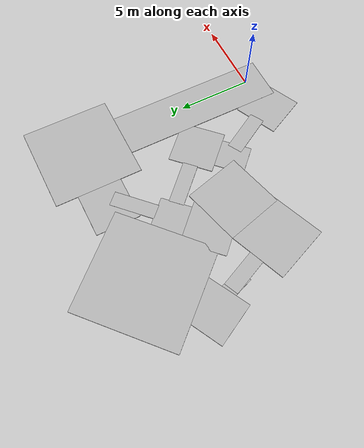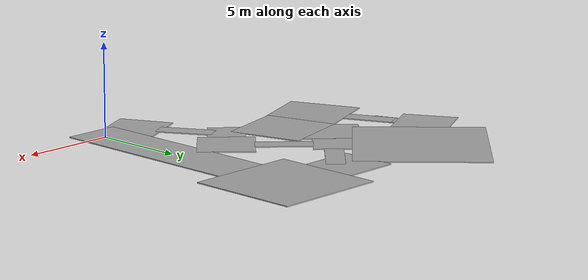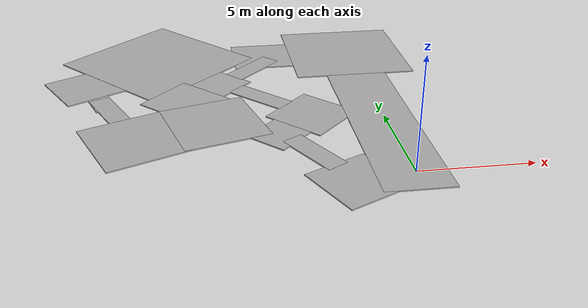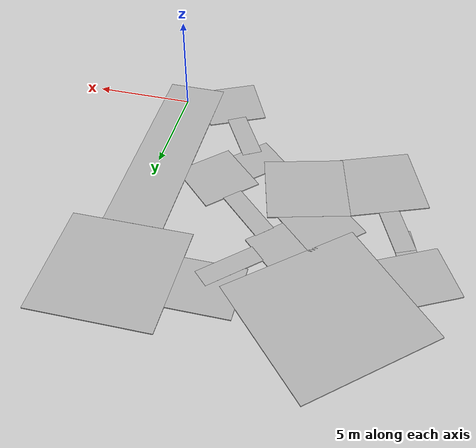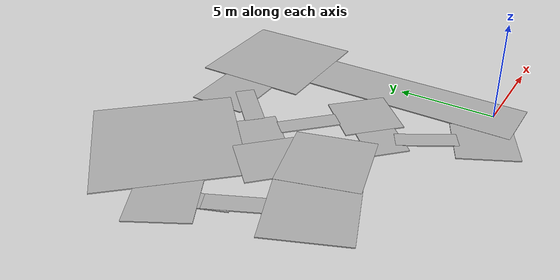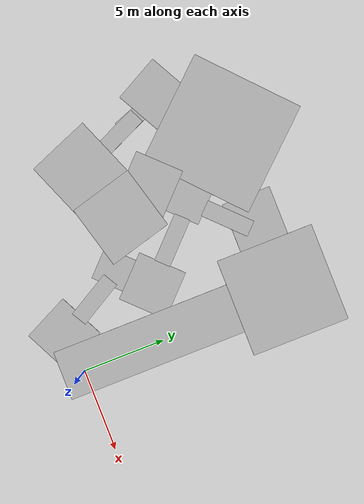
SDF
<sdf version="1.6">
 <world name="default">
  <light name="sun" type="directional">
   <pose>0 0 10 0 -0 0</pose>
   <diffuse>0.8 0.8 0.8 1</diffuse>
   <specular>0.2 0.2 0.2 1</specular>
   <attenuation>
    <range>1000</range>
    <constant>0.9</constant>
    <linear>0.01</linear>
    <quadratic>0.001</quadratic>
   </attenuation>
   <direction>-0.5 0.1 -0.9</direction>
  </light>
  <gravity>0 0 -9.8</gravity>
  <magnetic_field>6e-06 2.3e-05 -4.2e-05</magnetic_field>
  <atmosphere type="adiabatic"/>
  <physics name="default_physics" default="0" type="ode">
   <max_step_size>0.001</max_step_size>
   <real_time_factor>1</real_time_factor>
   <real_time_update_rate>1000</real_time_update_rate>
  </physics>
  <scene><ambient>0.4 0.4 0.4 1</ambient><background>0.7 0.7 0.7 1</background><shadows>1</shadows></scene>
  <audio><device>default</device></audio>
  <spherical_coordinates>
   <surface_model>EARTH_WGS84</surface_model>
   <latitude_deg>0</latitude_deg>
   <longitude_deg>0</longitude_deg>
   <elevation>0</elevation>
   <heading_deg>0</heading_deg>
  </spherical_coordinates>
  <model name="start_w400_black">
   <static>1</static>
   <link name="link">
    <collision name="collision">
     <geometry><box><size>11 3 0.05</size></box></geometry>
     <surface><friction><ode><mu>100</mu><mu2>50</mu2></ode></friction></surface>
    </collision>
    <visual name="visual">
     <cast_shadows>0</cast_shadows>
     <geometry><box><size>11 3 0.05</size></box></geometry>
     <material>
      <script>
       <uri>model://start_w400_black/materials/scripts</uri>
       <uri>model://start_w400_black/materials/textures/</uri>
       <name>start_w400_black/Image</name>
      </script>
     </material>
    </visual>
   </link>
   <pose>-0.193338 4.17342 0 0 -0 1.57079</pose>
  </model>
  <model name="left_curve_r300_a90_00">
   <static>1</static>
   <link name="link">
    <collision name="collision">
     <geometry><box><size>6 6 0.05</size></box></geometry>
     <surface><friction><ode><mu>100</mu><mu2>50</mu2></ode></friction></surface>
    </collision>
    <visual name="visual">
     <cast_shadows>0</cast_shadows>
     <geometry><box><size>6 6 0.05</size></box></geometry>
     <material>
      <script>
       <uri>model://left_curve_r300_a90_00/materials/scripts</uri>
       <uri>model://left_curve_r300_a90_00/materials/textures/</uri>
       <name>left_curve_r300_a90_00/Image</name>
      </script>
     </material>
    </visual>
   </link>
   <pose>-0.193023 12.674 0 0 -0 3.14159</pose>
  </model>
  <model name="left_curve_r150_a45_030">
   <static>1</static>
   <link name="link">
    <collision name="collision">
     <geometry><box><size>3 3 0.05</size></box></geometry>
     <surface><friction><ode><mu>100</mu><mu2>50</mu2></ode></friction></surface>
    </collision>
    <visual name="visual">
     <cast_shadows>0</cast_shadows>
     <geometry><box><size>3 3 0.05</size></box></geometry>
     <material>
      <script>
       <uri>model://left_curve_r150_a45_030/materials/scripts</uri>
       <uri>model://left_curve_r150_a45_030/materials/textures/</uri>
       <name>left_curve_r150_a45_030/Image</name>
      </script>
     </material>
    </visual>
   </link>
   <pose>-4.6927 12.6748 0 0 0 -1.5708</pose>
  </model>
  <model name="stop_crossing">
   <static>1</static>
   <link name="link">
    <collision name="collision">
     <geometry><box><size>2.1 2.1 0.05</size></box></geometry>
     <surface><friction><ode><mu>100</mu><mu2>50</mu2></ode></friction></surface>
    </collision>
    <visual name="visual">
     <cast_shadows>0</cast_shadows>
     <geometry><box><size>2.1 2.1 0.05</size></box></geometry>
     <material>
      <script>
       <uri>model://stop_crossing/materials/scripts</uri>
       <uri>model://stop_crossing/materials/textures/</uri>
       <name>stop_crossing/Image</name>
      </script>
     </material>
    </visual>
   </link>
   <pose>-7.10184 9.42657 0 0 -0 0.789918</pose>
  </model>
  <model name="straight_300_o_25">
   <static>1</static>
   <link name="link">
    <collision name="collision">
     <geometry><box><size>3 1 0.05</size></box></geometry>
     <surface><friction><ode><mu>100</mu><mu2>50</mu2></ode></friction></surface>
    </collision>
    <visual name="visual">
     <cast_shadows>0</cast_shadows>
     <geometry><box><size>3 1 0.05</size></box></geometry>
     <material>
      <script>
       <uri>model://straight_300_o_25/materials/scripts</uri>
       <uri>model://straight_300_o_25/materials/textures/</uri>
       <name>straight_300_o_25/Image</name>
      </script>
     </material>
    </visual>
   </link>
   <pose>-5.32382 11.1876 0.001 0 -0 0.774294</pose>
  </model>
  <model name="straight_300_o_25_0">
   <static>1</static>
   <link name="link">
    <collision name="collision">
     <geometry><box><size>3 1 0.05</size></box></geometry>
     <surface><friction><ode><mu>100</mu><mu2>50</mu2></ode></friction></surface>
    </collision>
    <visual name="visual">
     <cast_shadows>0</cast_shadows>
     <geometry><box><size>3 1 0.05</size></box></geometry>
     <material>
      <script>
       <uri>model://straight_300_o_25/materials/scripts</uri>
       <uri>model://straight_300_o_25/materials/textures/</uri>
       <name>straight_300_o_25/Image</name>
      </script>
     </material>
    </visual>
   </link>
   <pose>-5.32432 7.66399 0.00145 0 0 -0.781825</pose>
  </model>
  <model name="right_curve_r150_a90_o30">
   <static>1</static>
   <link name="link">
    <collision name="collision">
     <geometry><box><size>3 3 0.05</size></box></geometry>
     <surface><friction><ode><mu>100</mu><mu2>50</mu2></ode></friction></surface>
    </collision>
    <visual name="visual">
     <cast_shadows>0</cast_shadows>
     <geometry><box><size>3 3 0.05</size></box></geometry>
     <material>
      <script>
       <uri>model://right_curve_r150_a90_o30/materials/scripts</uri>
       <uri>model://right_curve_r150_a90_o30/materials/textures/</uri>
       <name>right_curve_r150_a90_o30/Image</name>
      </script>
     </material>
    </visual>
   </link>
   <pose>-3.23155 5.58171 0 0 -0 2.35677</pose>
  </model>
  <model name="left_curve_r100_a75_025">
   <static>1</static>
   <link name="link">
    <collision name="collision">
     <geometry><box><size>2 2 0.05</size></box></geometry>
     <surface><friction><ode><mu>100</mu><mu2>50</mu2></ode></friction></surface>
    </collision>
    <visual name="visual">
     <cast_shadows>0</cast_shadows>
     <geometry><box><size>2 2 0.05</size></box></geometry>
     <material>
      <script>
       <uri>model://left_curve_r100_a75_025/materials/scripts</uri>
       <uri>model://left_curve_r100_a75_025/materials/textures/</uri>
       <name>left_curve_r100_a75_025/Image</name>
      </script>
     </material>
    </visual>
   </link>
   <pose>-4.99373 3.81358 0 0 0 -0.782313</pose>
  </model>
  <model name="straight_300_o_25_0_clone">
   <static>1</static>
   <link name="link">
    <collision name="collision">
     <geometry><box><size>3 1 0.05</size></box></geometry>
     <surface><friction><ode><mu>100</mu><mu2>50</mu2></ode></friction></surface>
    </collision>
    <visual name="visual">
     <cast_shadows>0</cast_shadows>
     <geometry><box><size>3 1 0.05</size></box></geometry>
     <material>
      <script>
       <uri>model://straight_300_o_25/materials/scripts</uri>
       <uri>model://straight_300_o_25/materials/textures/</uri>
       <name>straight_300_o_25/Image</name>
      </script>
     </material>
    </visual>
   </link>
   <pose>-3.7385 2.09443 0.00145 0 -0 2.0927</pose>
  </model>
  <model name="right_curve_r150_a90_o30_clone">
   <static>1</static>
   <link name="link">
    <collision name="collision">
     <geometry><box><size>3 3 0.05</size></box></geometry>
     <surface><friction><ode><mu>100</mu><mu2>50</mu2></ode></friction></surface>
    </collision>
    <visual name="visual">
     <cast_shadows>0</cast_shadows>
     <geometry><box><size>3 3 0.05</size></box></geometry>
     <material>
      <script>
       <uri>model://right_curve_r150_a90_o30/materials/scripts</uri>
       <uri>model://right_curve_r150_a90_o30/materials/textures/</uri>
       <name>right_curve_r150_a90_o30/Image</name>
      </script>
     </material>
    </visual>
   </link>
   <pose>-2.46675 -0.335688 -0.002037 0 -0 0.452633</pose>
  </model>
  <model name="left_curve_r150_a60_020">
   <static>1</static>
   <link name="link">
    <collision name="collision">
     <geometry><box><size>3 3 0.05</size></box></geometry>
     <surface><friction><ode><mu>100</mu><mu2>50</mu2></ode></friction></surface>
    </collision>
    <visual name="visual">
     <cast_shadows>0</cast_shadows>
     <geometry><box><size>3 3 0.05</size></box></geometry>
     <material>
      <script>
       <uri>model://left_curve_r150_a60_020/materials/scripts</uri>
       <uri>model://left_curve_r150_a60_020/materials/textures/</uri>
       <name>left_curve_r150_a60_020/Image</name>
      </script>
     </material>
    </visual>
   </link>
   <pose>-8.89192 7.61762 0.001 0 0 -0.779843</pose>
  </model>
  <model name="right_curve_r200_a90_o20">
   <static>1</static>
   <link name="link">
    <collision name="collision">
     <geometry><box><size>4 4 0.05</size></box></geometry>
     <surface><friction><ode><mu>100</mu><mu2>50</mu2></ode></friction></surface>
    </collision>
    <visual name="visual">
     <cast_shadows>0</cast_shadows>
     <geometry><box><size>4 4 0.05</size></box></geometry>
     <material>
      <script>
       <uri>model://right_curve_r200_a90_o20/materials/scripts</uri>
       <uri>model://right_curve_r200_a90_o20/materials/textures/</uri>
       <name>right_curve_r200_a90_o20/Image</name>
      </script>
     </material>
    </visual>
   </link>
   <pose>-7.6945 5.3036 0.002 0 -0 1.83523</pose>
  </model>
  <model name="right_curve_r200_a90_o20_0">
   <static>1</static>
   <link name="link">
    <collision name="collision">
     <geometry><box><size>4 4 0.05</size></box></geometry>
     <surface><friction><ode><mu>100</mu><mu2>50</mu2></ode></friction></surface>
    </collision>
    <visual name="visual">
     <cast_shadows>0</cast_shadows>
     <geometry><box><size>4 4 0.05</size></box></geometry>
     <material>
      <script>
       <uri>model://right_curve_r200_a90_o20/materials/scripts</uri>
       <uri>model://right_curve_r200_a90_o20/materials/textures/</uri>
       <name>right_curve_r200_a90_o20/Image</name>
      </script>
     </material>
    </visual>
   </link>
   <pose>-11.1447 4.13942 0.001 0 -0 0.381381</pose>
  </model>
  <model name="right_curve_r150_a90_o30_0">
   <static>1</static>
   <link name="link">
    <collision name="collision">
     <geometry><box><size>3 3 0.05</size></box></geometry>
     <surface><friction><ode><mu>100</mu><mu2>50</mu2></ode></friction></surface>
    </collision>
    <visual name="visual">
     <cast_shadows>0</cast_shadows>
     <geometry><box><size>3 3 0.05</size></box></geometry>
     <material>
      <script>
       <uri>model://right_curve_r150_a90_o30/materials/scripts</uri>
       <uri>model://right_curve_r150_a90_o30/materials/textures/</uri>
       <name>right_curve_r150_a90_o30/Image</name>
      </script>
     </material>
    </visual>
   </link>
   <pose>-13.7237 9.88072 0 0 0 -1.08295</pose>
  </model>
  <model name="straight_300_o_25_0_clone_clone">
   <static>1</static>
   <link name="link">
    <collision name="collision">
     <geometry><box><size>3 1 0.05</size></box></geometry>
     <surface><friction><ode><mu>100</mu><mu2>50</mu2></ode></friction></surface>
    </collision>
    <visual name="visual">
     <cast_shadows>0</cast_shadows>
     <geometry><box><size>3 1 0.05</size></box></geometry>
     <material>
      <script>
       <uri>model://straight_300_o_25/materials/scripts</uri>
       <uri>model://straight_300_o_25/materials/textures/</uri>
       <name>straight_300_o_25/Image</name>
      </script>
     </material>
    </visual>
   </link>
   <pose>-12.3535 7.02768 -0.001 0 -0 1.99398</pose>
  </model>
  <model name="right_curve_r350_a90_o20">
   <static>1</static>
   <link name="link">
    <collision name="collision">
     <geometry><box><size>7 7 0.05</size></box></geometry>
     <surface><friction><ode><mu>100</mu><mu2>50</mu2></ode></friction></surface>
    </collision>
    <visual name="visual">
     <cast_shadows>0</cast_shadows>
     <geometry><box><size>7 7 0.05</size></box></geometry>
     <material>
      <script>
       <uri>model://right_curve_r350_a90_o20/materials/scripts</uri>
       <uri>model://right_curve_r350_a90_o20/materials/textures/</uri>
       <name>right_curve_r350_a90_o20/Image</name>
      </script>
     </material>
    </visual>
   </link>
   <pose>-10.1542 12.6944 0.001 0 0 -2.40206</pose>
  </model>
  <model name="straight_300_o_25_0_clone_clone_clone">
   <static>1</static>
   <link name="link">
    <collision name="collision">
     <geometry><box><size>3 1 0.05</size></box></geometry>
     <surface><friction><ode><mu>100</mu><mu2>50</mu2></ode></friction></surface>
    </collision>
    <visual name="visual">
     <cast_shadows>0</cast_shadows>
     <geometry><box><size>3 1 0.05</size></box></geometry>
     <material>
      <script>
       <uri>model://straight_300_o_25/materials/scripts</uri>
       <uri>model://straight_300_o_25/materials/textures/</uri>
       <name>straight_300_o_25/Image</name>
      </script>
     </material>
    </visual>
   </link>
   <pose>-13.0463 8.61101 -0.002 0 -0 1.92031</pose>
  </model>
 </world>
</sdf>
